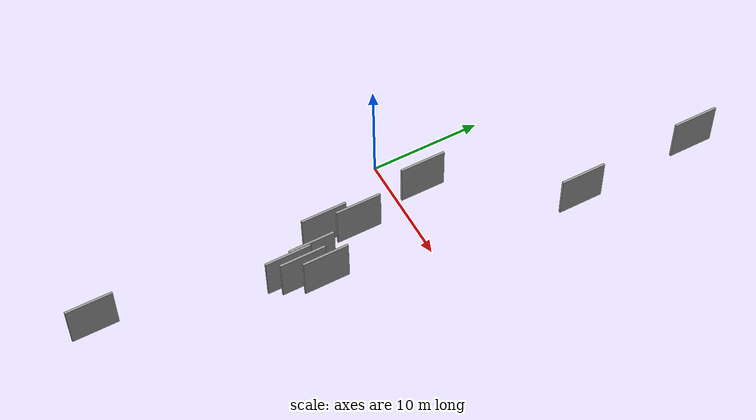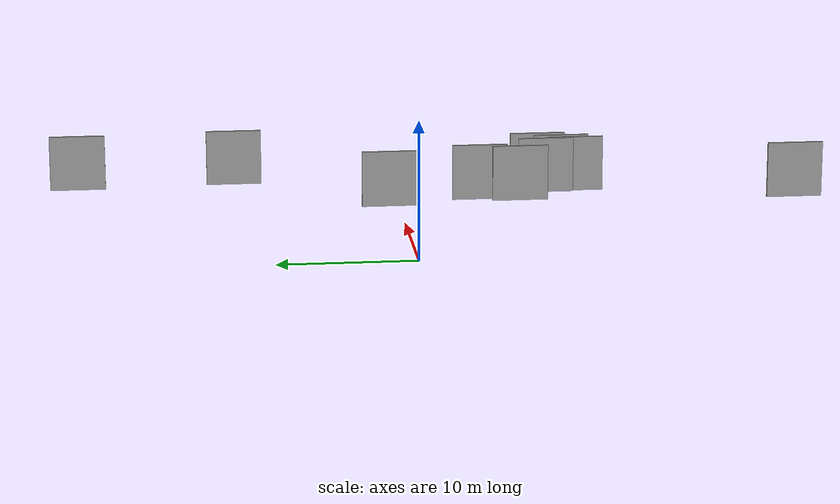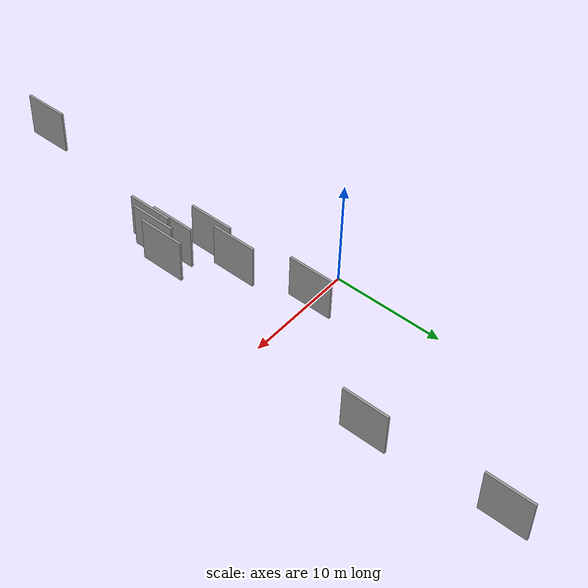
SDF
<sdf version="1.6">
 <world name="default">
  <scene>
   <sky><clouds><speed>12</speed></clouds></sky>
   <ambient>0.4 0.4 0.4 1</ambient>
   <background>0.7 0.7 0.7 1</background>
   <shadows>1</shadows>
  </scene>
  <gravity>0 0 -9.8066</gravity>
  <magnetic_field>6e-06 2.3e-05 -4.2e-05</magnetic_field>
  <physics default="0" name="default_physics" type="ode">
   <ode>
    <solver>
     <type>quick</type>
     <iters>10</iters>
     <sor>1.0</sor>
     <use_dynamic_moi_rescaling>0</use_dynamic_moi_rescaling>
    </solver>
    <constraints>
     <cfm>0</cfm>
     <erp>0.2</erp>
     <contact_max_correcting_vel>100</contact_max_correcting_vel>
     <contact_surface_layer>0.001</contact_surface_layer>
    </constraints>
   </ode>
   <max_step_size>0.004</max_step_size>
   <real_time_factor>1</real_time_factor>
   <real_time_update_rate>250</real_time_update_rate>
  </physics>
  <light name="sun" type="directional">
   <pose>0 0 10 0 0 0</pose>
   <diffuse>0.8 0.8 0.8 1</diffuse>
   <specular>0.2 0.2 0.2 1</specular>
   <attenuation>
    <range>1000</range>
    <constant>0.9</constant>
    <linear>0.01</linear>
    <quadratic>0.001</quadratic>
   </attenuation>
   <direction>-0.5 0.1 -0.9</direction>
  </light>
  <model name="grey_wall_1">
   <static>1</static>
   <pose>5.6764 1.5088 2.5 0.000000 0.000000 1.570796</pose>
   <link name="link">
    <pose>0 0 2.00 0 0 0</pose>
    <collision name="collision"><geometry><box><size>4.00 0.2 4.00</size></box></geometry></collision>
    <visual name="visual">
     <cast_shadows>0</cast_shadows>
     <geometry><box><size>4.00 0.2 4.00</size></box></geometry>
     <material>
      <script>
       <uri>model://grey_wall/materials/scripts</uri>
       <uri>model://grey_wall/materials/textures</uri>
       <name>vrc/grey_wall</name>
      </script>
     </material>
    </visual>
   </link>
  </model>
  <model name="grey_wall_2">
   <static>1</static>
   <pose>6.9285 -5.1303 2.5 0.000000 0.000000 1.570796</pose>
   <link name="link">
    <pose>0 0 2.00 0 0 0</pose>
    <collision name="collision"><geometry><box><size>4.00 0.2 4.00</size></box></geometry></collision>
    <visual name="visual">
     <cast_shadows>0</cast_shadows>
     <geometry><box><size>4.00 0.2 4.00</size></box></geometry>
     <material>
      <script>
       <uri>model://grey_wall/materials/scripts</uri>
       <uri>model://grey_wall/materials/textures</uri>
       <name>vrc/grey_wall</name>
      </script>
     </material>
    </visual>
   </link>
  </model>
  <model name="grey_wall_3">
   <static>1</static>
   <pose>6.3579 -7.9769 2.5 0.000000 0.000000 1.570796</pose>
   <link name="link">
    <pose>0 0 2.00 0 0 0</pose>
    <collision name="collision"><geometry><box><size>4.00 0.2 4.00</size></box></geometry></collision>
    <visual name="visual">
     <cast_shadows>0</cast_shadows>
     <geometry><box><size>4.00 0.2 4.00</size></box></geometry>
     <material>
      <script>
       <uri>model://grey_wall/materials/scripts</uri>
       <uri>model://grey_wall/materials/textures</uri>
       <name>vrc/grey_wall</name>
      </script>
     </material>
    </visual>
   </link>
  </model>
  <model name="grey_wall_4">
   <static>1</static>
   <pose>5.3005 -27.8583 2.5 0.000000 0.000000 1.570796</pose>
   <link name="link">
    <pose>0 0 2.00 0 0 0</pose>
    <collision name="collision"><geometry><box><size>4.00 0.2 4.00</size></box></geometry></collision>
    <visual name="visual">
     <cast_shadows>0</cast_shadows>
     <geometry><box><size>4.00 0.2 4.00</size></box></geometry>
     <material>
      <script>
       <uri>model://grey_wall/materials/scripts</uri>
       <uri>model://grey_wall/materials/textures</uri>
       <name>vrc/grey_wall</name>
      </script>
     </material>
    </visual>
   </link>
  </model>
  <model name="grey_wall_5">
   <static>1</static>
   <pose>8.6932 -12.3414 2.5 0.000000 0.000000 1.570796</pose>
   <link name="link">
    <pose>0 0 2.00 0 0 0</pose>
    <collision name="collision"><geometry><box><size>4.00 0.2 4.00</size></box></geometry></collision>
    <visual name="visual">
     <cast_shadows>0</cast_shadows>
     <geometry><box><size>4.00 0.2 4.00</size></box></geometry>
     <material>
      <script>
       <uri>model://grey_wall/materials/scripts</uri>
       <uri>model://grey_wall/materials/textures</uri>
       <name>vrc/grey_wall</name>
      </script>
     </material>
    </visual>
   </link>
  </model>
  <model name="grey_wall_6">
   <static>1</static>
   <pose>13.1013 12.3906 2.5 0.000000 0.000000 1.570796</pose>
   <link name="link">
    <pose>0 0 2.00 0 0 0</pose>
    <collision name="collision"><geometry><box><size>4.00 0.2 4.00</size></box></geometry></collision>
    <visual name="visual">
     <cast_shadows>0</cast_shadows>
     <geometry><box><size>4.00 0.2 4.00</size></box></geometry>
     <material>
      <script>
       <uri>model://grey_wall/materials/scripts</uri>
       <uri>model://grey_wall/materials/textures</uri>
       <name>vrc/grey_wall</name>
      </script>
     </material>
    </visual>
   </link>
  </model>
  <model name="grey_wall_7">
   <static>1</static>
   <pose>10.1202 -9.7482 2.5 0.000000 0.000000 1.570796</pose>
   <link name="link">
    <pose>0 0 2.00 0 0 0</pose>
    <collision name="collision"><geometry><box><size>4.00 0.2 4.00</size></box></geometry></collision>
    <visual name="visual">
     <cast_shadows>0</cast_shadows>
     <geometry><box><size>4.00 0.2 4.00</size></box></geometry>
     <material>
      <script>
       <uri>model://grey_wall/materials/scripts</uri>
       <uri>model://grey_wall/materials/textures</uri>
       <name>vrc/grey_wall</name>
      </script>
     </material>
    </visual>
   </link>
  </model>
  <model name="grey_wall_8">
   <static>1</static>
   <pose>9.3677 -11.3747 2.5 0.000000 0.000000 1.570796</pose>
   <link name="link">
    <pose>0 0 2.00 0 0 0</pose>
    <collision name="collision"><geometry><box><size>4.00 0.2 4.00</size></box></geometry></collision>
    <visual name="visual">
     <cast_shadows>0</cast_shadows>
     <geometry><box><size>4.00 0.2 4.00</size></box></geometry>
     <material>
      <script>
       <uri>model://grey_wall/materials/scripts</uri>
       <uri>model://grey_wall/materials/textures</uri>
       <name>vrc/grey_wall</name>
      </script>
     </material>
    </visual>
   </link>
  </model>
  <model name="grey_wall_9">
   <static>1</static>
   <pose>12.5624 23.7848 2.5 0.000000 0.000000 1.570796</pose>
   <link name="link">
    <pose>0 0 2.00 0 0 0</pose>
    <collision name="collision"><geometry><box><size>4.00 0.2 4.00</size></box></geometry></collision>
    <visual name="visual">
     <cast_shadows>0</cast_shadows>
     <geometry><box><size>4.00 0.2 4.00</size></box></geometry>
     <material>
      <script>
       <uri>model://grey_wall/materials/scripts</uri>
       <uri>model://grey_wall/materials/textures</uri>
       <name>vrc/grey_wall</name>
      </script>
     </material>
    </visual>
   </link>
  </model>
  <model name="grey_wall_10">
   <static>1</static>
   <pose>8.4816 -10.1418 2.5 0.000000 0.000000 1.570796</pose>
   <link name="link">
    <pose>0 0 2.00 0 0 0</pose>
    <collision name="collision"><geometry><box><size>4.00 0.2 4.00</size></box></geometry></collision>
    <visual name="visual">
     <cast_shadows>0</cast_shadows>
     <geometry><box><size>4.00 0.2 4.00</size></box></geometry>
     <material>
      <script>
       <uri>model://grey_wall/materials/scripts</uri>
       <uri>model://grey_wall/materials/textures</uri>
       <name>vrc/grey_wall</name>
      </script>
     </material>
    </visual>
   </link>
  </model>
 </world>
</sdf>
